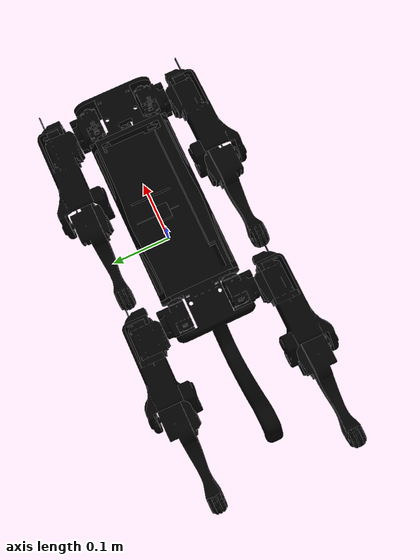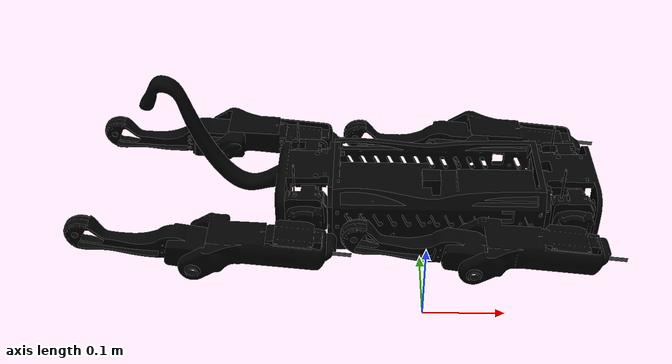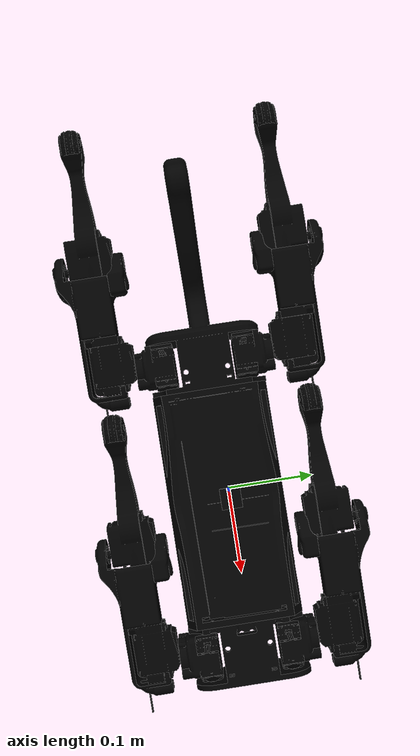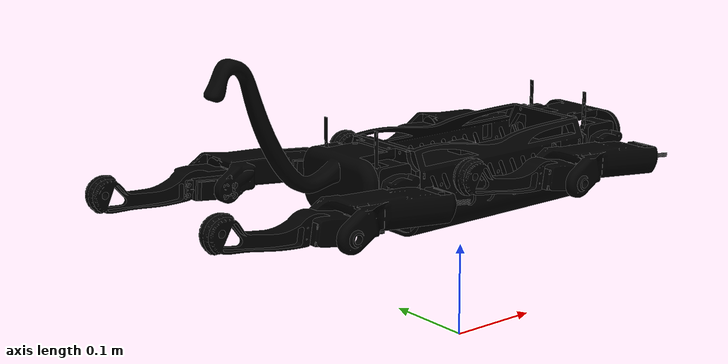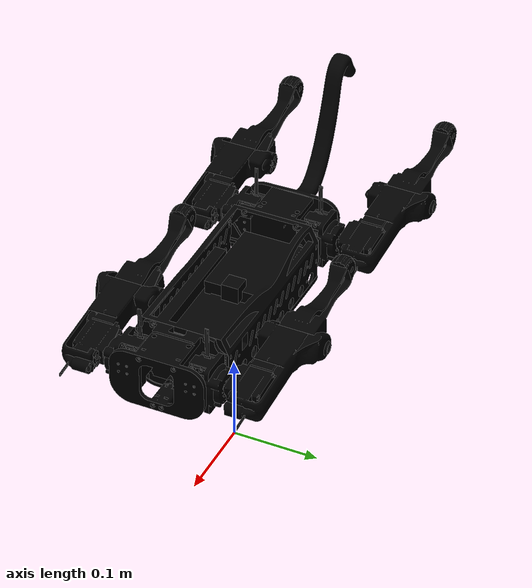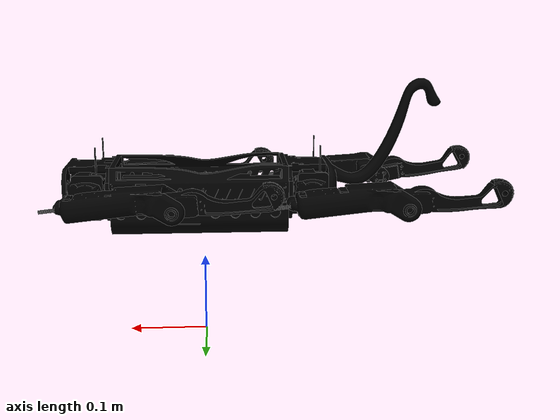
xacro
<?xml version="1.0" ?>
<robot name="coco" xmlns:xacro="http://www.ros.org/wiki/xacro">

<xacro:include filename="$(find coco_description)/urdf/materials.xacro" />
<xacro:include filename="$(find coco_description)/urdf/coco.ros2_control.xacro" />

<link name="base_footprint"/>
<link name="base_link">
  <inertial>
    <origin xyz="0.01719416873843675 -0.010586956103026538 -0.030271020725176637" rpy="0 0 0"/>
    <mass value="1.1592726862903535"/>
    <inertia ixx="0.001525" iyy="0.004931" izz="0.005428" ixy="2.4e-05" iyz="-7.3e-05" ixz="0.000131"/>
  </inertial>
  <visual>
    <origin xyz="0 0 0" rpy="0 0 0"/>
    <geometry>
      <mesh filename="file://$(find coco_description)/meshes/base_link.stl" scale="0.001 0.001 0.001"/>
    </geometry>
    <material name="silver"/>
  </visual>
  <collision>
    <origin xyz="0 0 0" rpy="0 0 0"/>
    <geometry>
      <mesh filename="file://$(find coco_description)/meshes/base_link.stl" scale="0.001 0.001 0.001"/>
    </geometry>
  </collision>
</link>

<joint name="footprint_to_base" type="fixed">
  <parent link="base_footprint"/>
  <child  link="base_link"/>
  <!-- set at standby high -->
  <origin xyz="0 0 0.2" rpy="0 0 0"/>
</joint>
<link name="imu_link">
  <inertial>
    <origin xyz="-0.0171941 -0.01 -0.0302" rpy="0 0 0"/>
    <mass value="0.01"/>
    <inertia
      ixx="1e-6" iyy="1e-6" izz="1e-6"
      ixy="0" ixz="0" iyz="0"/>
  </inertial>
  <visual>
    <origin xyz="0 0 0" rpy="0 0 0"/>
    <geometry><box size="0.02 0.02 0.02"/></geometry>
    <material name="silver"/>
  </visual>
</link>

<joint name="base_to_imu" type="fixed">
  <origin xyz="0.0 0 0" rpy="0 0 0"/>
  <parent link="base_link"/>
  <child  link="imu_link"/>
</joint>
<link name="rear_link_1">
  <inertial>
    <origin xyz="-0.034918114367350164 0.0007461285796454375 0.005485059366080493" rpy="0 0 0"/>
    <mass value="0.11479594943154815"/>
    <inertia ixx="0.000174" iyy="0.000221" izz="0.000207" ixy="-0.0" iyz="0.0" ixz="4.7e-05"/>
  </inertial>
  <visual>
    <origin xyz="0.106086 0.004256 0.004897" rpy="0 0 0"/>
    <geometry>
      <mesh filename="file://$(find coco_description)/meshes/rear_link_1.stl" scale="0.001 0.001 0.001"/>
    </geometry>
    <material name="silver"/>
  </visual>
  <collision>
    <origin xyz="0.106086 0.004256 0.004897" rpy="0 0 0"/>
    <geometry>
      <mesh filename="file://$(find coco_description)/meshes/rear_link_1.stl" scale="0.001 0.001 0.001"/>
    </geometry>
  </collision>
</link>

<link name="_front_link_1">
  <inertial>
    <origin xyz="0.028155859770594552 0.0002748583935074482 0.0015437264704093443" rpy="0 0 0"/>
    <mass value="0.10341137221269066"/>
    <inertia ixx="0.000133" iyy="0.000109" izz="0.000127" ixy="0.0" iyz="0.0" ixz="-2e-06"/>
  </inertial>
  <visual>
    <origin xyz="-0.115911 0.004871 0.005051" rpy="0 0 0"/>
    <geometry>
      <mesh filename="file://$(find coco_description)/meshes/_front_link_1.stl" scale="0.001 0.001 0.001"/>
    </geometry>
    <material name="silver"/>
  </visual>
  <collision>
    <origin xyz="-0.115911 0.004871 0.005051" rpy="0 0 0"/>
    <geometry>
      <mesh filename="file://$(find coco_description)/meshes/_front_link_1.stl" scale="0.001 0.001 0.001"/>
    </geometry>
  </collision>
</link>

<link name="laser">
  <inertial>
    <origin xyz="8.838579649582401e-06 -0.0005477770066574924 -0.017396902560964038" rpy="0 0 0"/>
    <mass value="0.10990695887765863"/>
    <inertia ixx="3.7e-05" iyy="3.7e-05" izz="4.7e-05" ixy="-0.0" iyz="-0.0" ixz="-0.0"/>
  </inertial>
  <visual>
    <origin xyz="0.025005 0.004393 0.060788" rpy="0 0 0"/>
    <geometry>
      <mesh filename="file://$(find coco_description)/meshes/laser_link_1.stl" scale="0.001 0.001 0.001"/>
    </geometry>
    <material name="silver"/>
  </visual>
  <collision>
    <origin xyz="0.025005 0.004393 0.060788" rpy="0 0 0"/>
    <geometry>
      <mesh filename="file://$(find coco_description)/meshes/laser_link_1.stl" scale="0.001 0.001 0.001"/>
    </geometry>
  </collision>
</link>

<link name="rf_coax_link_1">
  <inertial>
    <origin xyz="-0.027369110162246246 -0.004767928904959445 -0.009790015228539686" rpy="0 0 0"/>
    <mass value="0.0884976360458573"/>
    <inertia ixx="2.6e-05" iyy="3.1e-05" izz="2.1e-05" ixy="-1e-06" iyz="-0.0" ixz="0.0"/>
  </inertial>
  <visual>
    <origin xyz="-0.17289 0.043844 -0.001027" rpy="0 0 0"/>
    <geometry>
      <mesh filename="file://$(find coco_description)/meshes/rf_coax_link_1.stl" scale="0.001 0.001 0.001"/>
    </geometry>
    <material name="silver"/>
  </visual>
  <collision>
    <origin xyz="-0.17289 0.043844 -0.001027" rpy="0 0 0"/>
    <geometry>
      <mesh filename="file://$(find coco_description)/meshes/rf_coax_link_1.stl" scale="0.001 0.001 0.001"/>
    </geometry>
  </collision>
</link>

<link name="lf_coax_link_1">
  <inertial>
    <origin xyz="-0.02736832625881655 0.004768593749374127 -0.009737944773185552" rpy="0 0 0"/>
    <mass value="0.0884324940282"/>
    <inertia ixx="2.6e-05" iyy="3.1e-05" izz="2.1e-05" ixy="0.0" iyz="0.0" ixz="0.0"/>
  </inertial>
  <visual>
    <origin xyz="-0.172927 -0.034155 -0.001125" rpy="0 0 0"/>
    <geometry>
      <mesh filename="file://$(find coco_description)/meshes/lf_coax_link_1.stl" scale="0.001 0.001 0.001"/>
    </geometry>
    <material name="silver"/>
  </visual>
  <collision>
    <origin xyz="-0.172927 -0.034155 -0.001125" rpy="0 0 0"/>
    <geometry>
      <mesh filename="file://$(find coco_description)/meshes/lf_coax_link_1.stl" scale="0.001 0.001 0.001"/>
    </geometry>
  </collision>
</link>

<link name="rb_coax_link_1">
  <inertial>
    <origin xyz="-0.02737074559498745 -0.004816128460891356 -0.009784330590262647" rpy="0 0 0"/>
    <mass value="0.08849756558311966"/>
    <inertia ixx="2.6e-05" iyy="3.1e-05" izz="2.1e-05" ixy="-1e-06" iyz="-0.0" ixz="0.0"/>
  </inertial>
  <visual>
    <origin xyz="0.106596 0.043339 -0.001713" rpy="0 0 0"/>
    <geometry>
      <mesh filename="file://$(find coco_description)/meshes/rb_coax_link_1.stl" scale="0.001 0.001 0.001"/>
    </geometry>
    <material name="silver"/>
  </visual>
  <collision>
    <origin xyz="0.106596 0.043339 -0.001713" rpy="0 0 0"/>
    <geometry>
      <mesh filename="file://$(find coco_description)/meshes/rb_coax_link_1.stl" scale="0.001 0.001 0.001"/>
    </geometry>
  </collision>
</link>

<link name="lb_coax_link_1">
  <inertial>
    <origin xyz="-0.02736576332397661 0.00472931361840883 -0.009763230662882694" rpy="0 0 0"/>
    <mass value="0.08843241963528373"/>
    <inertia ixx="2.6e-05" iyy="3.1e-05" izz="2.1e-05" ixy="0.0" iyz="0.0" ixz="0.0"/>
  </inertial>
  <visual>
    <origin xyz="0.106596 -0.034661 -0.001613" rpy="0 0 0"/>
    <geometry>
      <mesh filename="file://$(find coco_description)/meshes/lb_coax_link_1.stl" scale="0.001 0.001 0.001"/>
    </geometry>
    <material name="silver"/>
  </visual>
  <collision>
    <origin xyz="0.106596 -0.034661 -0.001613" rpy="0 0 0"/>
    <geometry>
      <mesh filename="file://$(find coco_description)/meshes/lb_coax_link_1.stl" scale="0.001 0.001 0.001"/>
    </geometry>
  </collision>
</link>

<link name="lb_femur_link_1">
  <inertial>
    <origin xyz="-0.04159478914261455 0.033027045783123675 0.0021016512248570787" rpy="0 0 0"/>
    <mass value="0.1909714381661718"/>
    <inertia ixx="6.2e-05" iyy="0.000282" izz="0.000317" ixy="1.8e-05" iyz="-0.0" ixz="1.9e-05"/>
  </inertial>
  <visual>
    <origin xyz="0.1351 -0.057832 0.008048" rpy="0 0 0"/>
    <geometry>
      <mesh filename="file://$(find coco_description)/meshes/lb_femur_link_1.stl" scale="0.001 0.001 0.001"/>
    </geometry>
    <material name="silver"/>
  </visual>
  <collision>
    <origin xyz="0.1351 -0.057832 0.008048" rpy="0 0 0"/>
    <geometry>
      <mesh filename="file://$(find coco_description)/meshes/lb_femur_link_1.stl" scale="0.001 0.001 0.001"/>
    </geometry>
  </collision>
</link>

<link name="lf_femur_link_1">
  <inertial>
    <origin xyz="-0.04162948158977843 0.03304308687232135 0.0021804149880840333" rpy="0 0 0"/>
    <mass value="0.1909714365177458"/>
    <inertia ixx="6.2e-05" iyy="0.000282" izz="0.000318" ixy="1.8e-05" iyz="-0.0" ixz="1.9e-05"/>
  </inertial>
  <visual>
    <origin xyz="-0.144429 -0.057368 0.008461" rpy="0 0 0"/>
    <geometry>
      <mesh filename="file://$(find coco_description)/meshes/lf_femur_link_1.stl" scale="0.001 0.001 0.001"/>
    </geometry>
    <material name="silver"/>
  </visual>
  <collision>
    <origin xyz="-0.144429 -0.057368 0.008461" rpy="0 0 0"/>
    <geometry>
      <mesh filename="file://$(find coco_description)/meshes/lf_femur_link_1.stl" scale="0.001 0.001 0.001"/>
    </geometry>
  </collision>
</link>

<link name="rf_femur_link_1">
  <inertial>
    <origin xyz="-0.041468789547334545 -0.03299229667627736 0.002126291600336283" rpy="0 0 0"/>
    <mass value="0.19092987382506607"/>
    <inertia ixx="6.2e-05" iyy="0.000282" izz="0.000317" ixy="-1.7e-05" iyz="0.0" ixz="1.9e-05"/>
  </inertial>
  <visual>
    <origin xyz="-0.144371 0.06713 0.008743" rpy="0 0 0"/>
    <geometry>
      <mesh filename="file://$(find coco_description)/meshes/rf_femur_link_1.stl" scale="0.001 0.001 0.001"/>
    </geometry>
    <material name="silver"/>
  </visual>
  <collision>
    <origin xyz="-0.144371 0.06713 0.008743" rpy="0 0 0"/>
    <geometry>
      <mesh filename="file://$(find coco_description)/meshes/rf_femur_link_1.stl" scale="0.001 0.001 0.001"/>
    </geometry>
  </collision>
</link>

<link name="rb_femur_link_1">
  <inertial>
    <origin xyz="-0.04271911608770684 -0.03626187021884443 0.0014400330097334114" rpy="0 0 0"/>
    <mass value="0.24958712980886347"/>
    <inertia ixx="7.5e-05" iyy="0.000319" izz="0.000359" ixy="-2.1e-05" iyz="-1e-06" ixz="2.5e-05"/>
  </inertial>
  <visual>
    <origin xyz="0.135108 0.066677 0.007984" rpy="0 0 0"/>
    <geometry>
      <mesh filename="file://$(find coco_description)/meshes/rb_femur_link_1.stl" scale="0.001 0.001 0.001"/>
    </geometry>
    <material name="silver"/>
  </visual>
  <collision>
    <origin xyz="0.135108 0.066677 0.007984" rpy="0 0 0"/>
    <geometry>
      <mesh filename="file://$(find coco_description)/meshes/rb_femur_link_1.stl" scale="0.001 0.001 0.001"/>
    </geometry>
  </collision>
</link>

<link name="lb_tibia_link_1">
  <inertial>
    <origin xyz="-0.03196384904823907 0.027725556247434155 0.003859745760892816" rpy="0 0 0"/>
    <mass value="0.10314122455204974"/>
    <inertia ixx="1.8e-05" iyy="0.000196" izz="0.0002" ixy="-0.0" iyz="-1e-06" ixz="1.3e-05"/>
  </inertial>
  <visual>
    <origin xyz="0.242628 -0.063618 0.010796" rpy="0 0 0"/>
    <geometry>
      <mesh filename="file://$(find coco_description)/meshes/lb_tibia_link_1.stl" scale="0.001 0.001 0.001"/>
    </geometry>
    <material name="silver"/>
  </visual>
  <collision>
    <origin xyz="0.242628 -0.063618 0.010796" rpy="0 0 0"/>
    <geometry>
      <mesh filename="file://$(find coco_description)/meshes/lb_tibia_link_1.stl" scale="0.001 0.001 0.001"/>
    </geometry>
  </collision>
</link>

<link name="lf_tibia_link_1">
  <inertial>
    <origin xyz="-0.031976714332929285 0.02772553703112078 0.0037573349954613177" rpy="0 0 0"/>
    <mass value="0.10314122455337109"/>
    <inertia ixx="1.8e-05" iyy="0.000196" izz="0.0002" ixy="-0.0" iyz="-1e-06" ixz="1.3e-05"/>
  </inertial>
  <visual>
    <origin xyz="-0.036894 -0.063154 0.0109" rpy="0 0 0"/>
    <geometry>
      <mesh filename="file://$(find coco_description)/meshes/lf_tibia_link_1.stl" scale="0.001 0.001 0.001"/>
    </geometry>
    <material name="silver"/>
  </visual>
  <collision>
    <origin xyz="-0.036894 -0.063154 0.0109" rpy="0 0 0"/>
    <geometry>
      <mesh filename="file://$(find coco_description)/meshes/lf_tibia_link_1.stl" scale="0.001 0.001 0.001"/>
    </geometry>
  </collision>
</link>

<link name="rf_tibia_link_1">
  <inertial>
    <origin xyz="-0.031502492319461874 -0.02779102082383947 0.0062624864037398" rpy="0 0 0"/>
    <mass value="0.10311453435844117"/>
    <inertia ixx="2.1e-05" iyy="0.000196" izz="0.000197" ixy="-0.0" iyz="1e-06" ixz="2.7e-05"/>
  </inertial>
  <visual>
    <origin xyz="-0.036961 0.072914 0.011343" rpy="0 0 0"/>
    <geometry>
      <mesh filename="file://$(find coco_description)/meshes/rf_tibia_link_1.stl" scale="0.001 0.001 0.001"/>
    </geometry>
    <material name="silver"/>
  </visual>
  <collision>
    <origin xyz="-0.036961 0.072914 0.011343" rpy="0 0 0"/>
    <geometry>
      <mesh filename="file://$(find coco_description)/meshes/rf_tibia_link_1.stl" scale="0.001 0.001 0.001"/>
    </geometry>
  </collision>
</link>

<link name="rb_tibia_link_1">
  <inertial>
    <origin xyz="-0.03144126301711331 -0.027792497170823674 0.0063870183770951576" rpy="0 0 0"/>
    <mass value="0.10311453435963047"/>
    <inertia ixx="2.1e-05" iyy="0.000195" izz="0.000196" ixy="-0.0" iyz="1e-06" ixz="2.8e-05"/>
  </inertial>
  <visual>
    <origin xyz="0.242508 0.072461 0.010989" rpy="0 0 0"/>
    <geometry>
      <mesh filename="file://$(find coco_description)/meshes/rb_tibia_link_1.stl" scale="0.001 0.001 0.001"/>
    </geometry>
    <material name="silver"/>
  </visual>
  <collision>
    <origin xyz="0.242508 0.072461 0.010989" rpy="0 0 0"/>
    <geometry>
      <mesh filename="file://$(find coco_description)/meshes/rb_tibia_link_1.stl" scale="0.001 0.001 0.001"/>
    </geometry>
  </collision>
</link>

<joint name="base_link_to_rear_joint" type="fixed">
  <origin xyz="-0.106086 -0.004256 -0.004897" rpy="0 0 0"/>
  <parent link="base_link"/>
  <child link="rear_link_1"/>
</joint>

<joint name="base_link_to_front_joint" type="fixed">
  <origin xyz="0.115911 -0.004871 -0.005051" rpy="0 0 0"/>
  <parent link="base_link"/>
  <child link="_front_link_1"/>
</joint>

<joint name="base_link_to_lidar_joint" type="fixed">
  <origin xyz="-0.025005 -0.004393 -0.060788" rpy="3.14159 0 3.14159"/>
  <parent link="base_link"/>
  <child link="laser"/>
</joint>

<joint name="rf_coax_joint" type="revolute">
  <origin xyz="0.056979 -0.038973 0.006078" rpy="0 0 0"/>
  <parent link="_front_link_1"/>
  <child link="rf_coax_link_1"/>
  <axis xyz="-1.0 0.000465 0.000465"/>
  <limit upper="0.349066" lower="-1.22173" effort="100" velocity="100"/>
</joint>

<joint name="lf_coax_joint" type="revolute">
  <origin xyz="0.057016 0.039026 0.006176" rpy="0 0 0"/>
  <parent link="_front_link_1"/>
  <child link="lf_coax_link_1"/>
  <axis xyz="-1.0 0.000465 0.000465"/>
  <limit upper="1.22173" lower="-0.610865" effort="100" velocity="100"/>
</joint>

<joint name="rb_coax_joint" type="revolute">
  <origin xyz="-0.00051 -0.039083 0.00661" rpy="0 0 0"/>
  <parent link="rear_link_1"/>
  <child link="rb_coax_link_1"/>
  <axis xyz="-1.0 0.0 0.0"/>
  <limit upper="0.610865" lower="-1.22173" effort="100" velocity="100"/>
</joint>

<joint name="lb_coax_joint" type="revolute">
  <origin xyz="-0.00051 0.038917 0.00651" rpy="0 0 0"/>
  <parent link="rear_link_1"/>
  <child link="lb_coax_link_1"/>
  <axis xyz="-1.0 0.0 0.0"/>
  <limit upper="1.22173" lower="-0.610865" effort="100" velocity="100"/>
</joint>

<joint name="lb_femur_joint" type="revolute">
  <origin xyz="-0.028504 0.023171 -0.009661" rpy="0 0 0"/>
  <parent link="lb_coax_link_1"/>
  <child link="lb_femur_link_1"/>
  <axis xyz="-0.0 1.0 0.0"/>
  <limit upper="0.0" lower="-3.141593" effort="100" velocity="100"/>
</joint>

<joint name="lf_femur_joint" type="revolute">
  <origin xyz="-0.028498 0.023213 -0.009586" rpy="0 0 0"/>
  <parent link="lf_coax_link_1"/>
  <child link="lf_femur_link_1"/>
  <axis xyz="0.0 1.0 0.0"/>
  <limit upper="0.0" lower="-3.141593" effort="100" velocity="100"/>
</joint>

<joint name="rf_femur_joint" type="revolute">
  <origin xyz="-0.028519 -0.023286 -0.00977" rpy="0 0 0"/>
  <parent link="rf_coax_link_1"/>
  <child link="rf_femur_link_1"/>
  <axis xyz="-0.0 -1.0 -0.0"/>
  <limit upper="3.141593" lower="0.0" effort="100" velocity="100"/>
</joint>

<joint name="rb_femur_joint" type="revolute">
  <origin xyz="-0.028512 -0.023338 -0.009697" rpy="0 0 0"/>
  <parent link="rb_coax_link_1"/>
  <child link="rb_femur_link_1"/>
  <axis xyz="0.0 -1.0 0.0"/>
  <limit upper="3.141593" lower="0.0" effort="100" velocity="100"/>
</joint>

<joint name="lb_tibia_joint" type="revolute">
  <origin xyz="-0.107528 0.005786 -0.002748" rpy="0 0 0"/>
  <parent link="lb_femur_link_1"/>
  <child link="lb_tibia_link_1"/>
  <axis xyz="-0.0 1.0 -0.0"/>
  <limit upper="0.0" lower="-2.617994" effort="100" velocity="100"/>
</joint>

<joint name="lf_tibia_joint" type="revolute">
  <origin xyz="-0.107535 0.005786 -0.002439" rpy="0 0 0"/>
  <parent link="lf_femur_link_1"/>
  <child link="lf_tibia_link_1"/>
  <axis xyz="-0.0 1.0 0.0"/>
  <limit upper="0.0" lower="-2.617994" effort="100" velocity="100"/>
</joint>

<joint name="rf_tibia_joint" type="revolute">
  <origin xyz="-0.10741 -0.005784 -0.0026" rpy="0 0 0"/>
  <parent link="rf_femur_link_1"/>
  <child link="rf_tibia_link_1"/>
  <axis xyz="0.001207 -0.999999 -6.6e-05"/>
  <limit upper="2.617994" lower="0.0" effort="100" velocity="100"/>
</joint>

<joint name="rb_tibia_joint" type="revolute">
  <origin xyz="-0.1074 -0.005784 -0.003005" rpy="0 0 0"/>
  <parent link="rb_femur_link_1"/>
  <child link="rb_tibia_link_1"/>
  <axis xyz="0.001208 -0.999999 -6.1e-05"/>
  <limit upper="2.617994" lower="0.0" effort="100" velocity="100"/>
</joint>

</robot>

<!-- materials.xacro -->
<robot name="coco" xmlns:xacro="http://www.ros.org/wiki/xacro" >

<material name="silver">
  <color rgba="0.0 0.0 0.0 1.000"/>
</material>

</robot>
